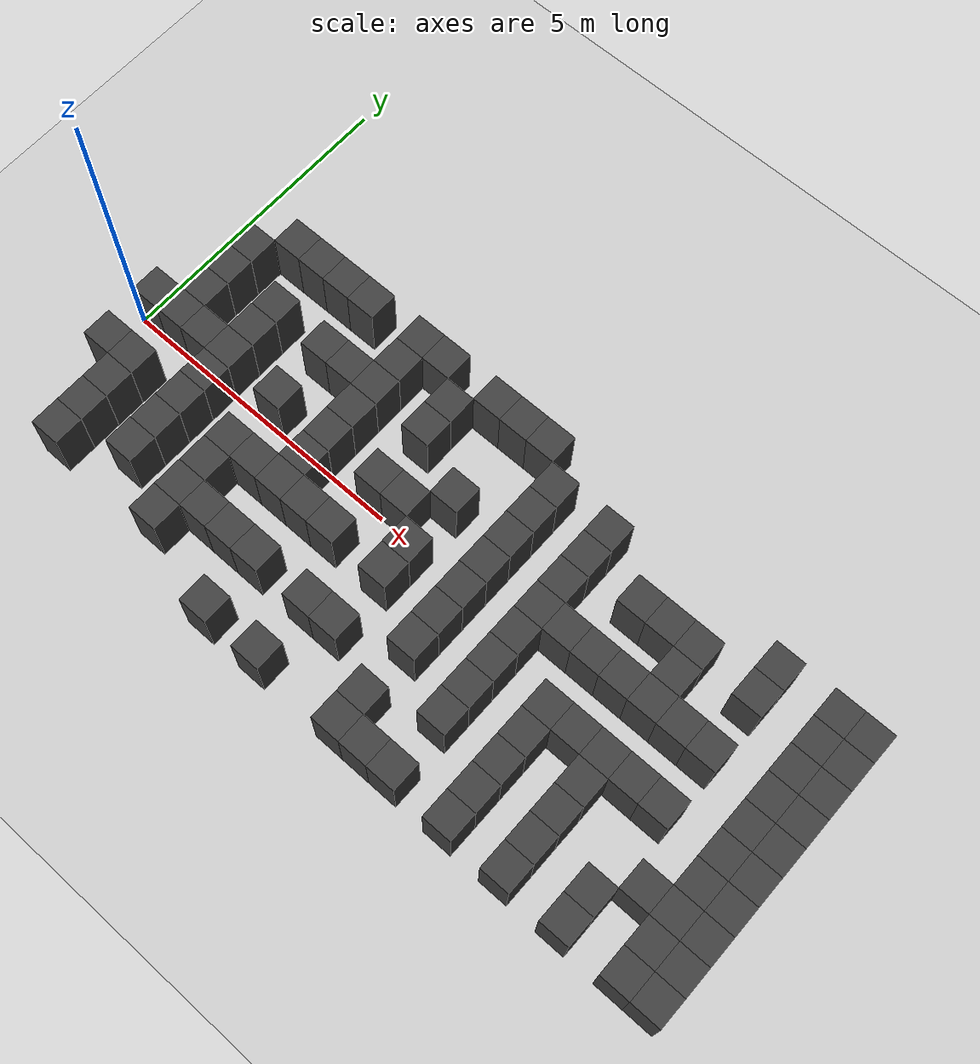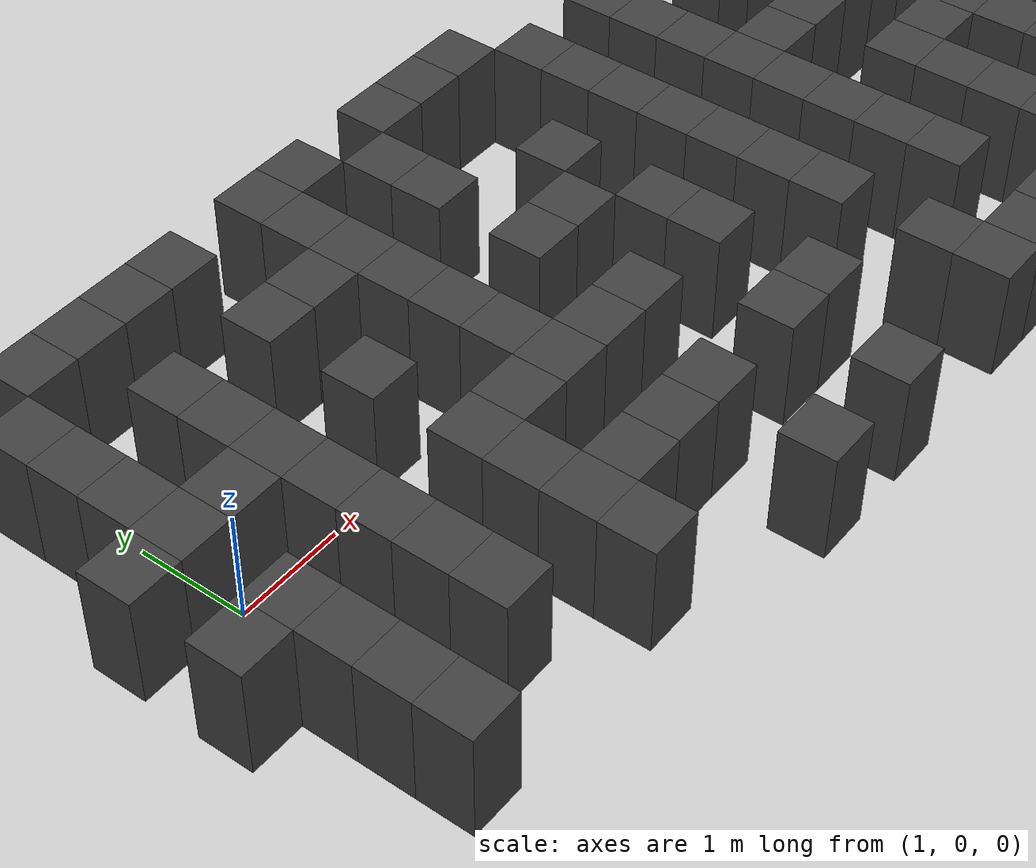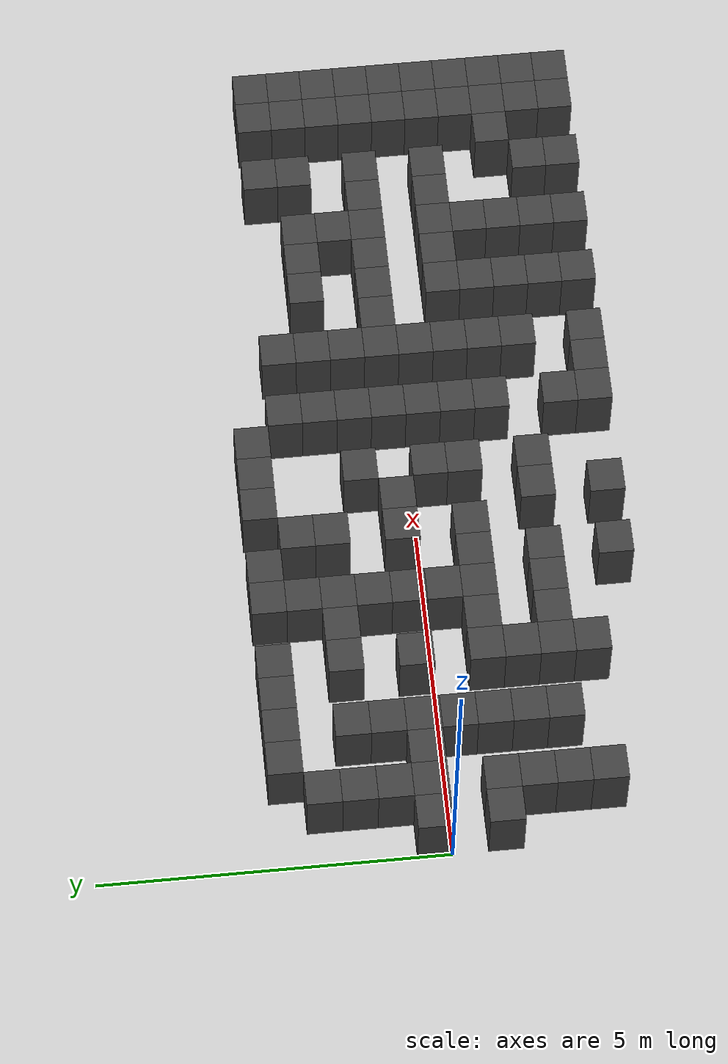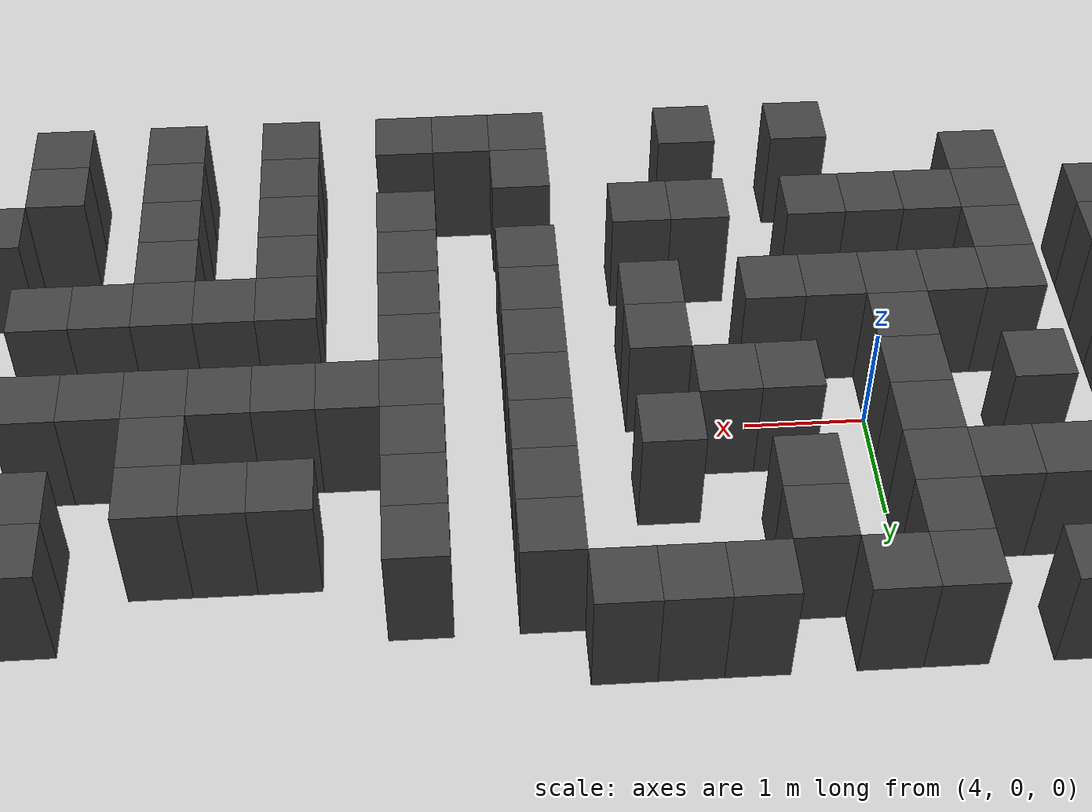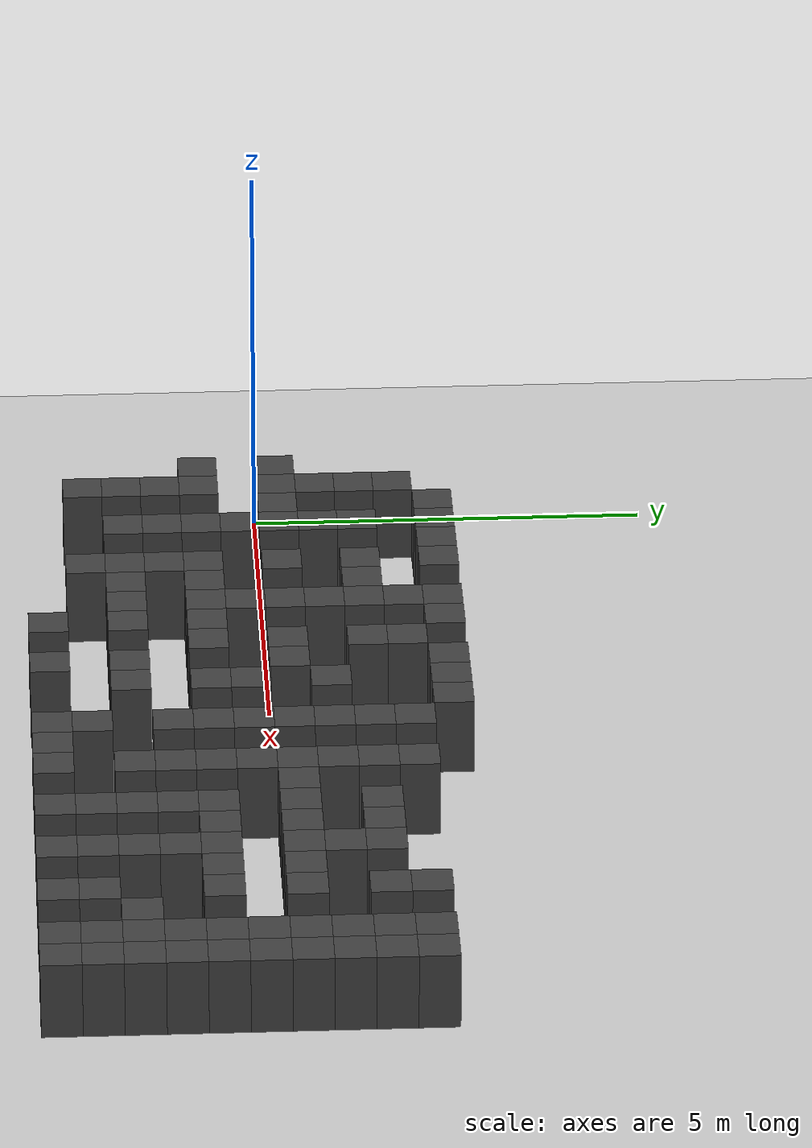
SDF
<sdf version="1.7">
 <world name="map_16271">
  <model name="ground_plane">
   <static>true</static>
   <link name="link">
    <collision name="collision">
     <geometry><plane><normal>0 0 1</normal><size>200 200</size></plane></geometry>
    </collision>
    <visual name="visual">
     <geometry><plane><normal>0 0 1</normal><size>200 200</size></plane></geometry>
     <material><ambient>0.8 0.8 0.8 1</ambient><diffuse>0.8 0.8 0.8 1</diffuse></material>
    </visual>
   </link>
  </model>
  <model name="maze_environment">
   <static>true</static>
   <link name="wall_501">
    <pose>1.250 2.250 0.500 0 0 0</pose>
    <collision name="col"><geometry><box><size>0.5 0.5 1.0</size></box></geometry></collision>
    <visual name="vis">
     <geometry><box><size>0.5 0.5 1.0</size></box></geometry>
     <material><ambient>0.15 0.15 0.15 1</ambient><diffuse>0.25 0.25 0.25 1</diffuse></material>
    </visual>
   </link>
   <link name="wall_502">
    <pose>1.750 2.250 0.500 0 0 0</pose>
    <collision name="col"><geometry><box><size>0.5 0.5 1.0</size></box></geometry></collision>
    <visual name="vis">
     <geometry><box><size>0.5 0.5 1.0</size></box></geometry>
     <material><ambient>0.15 0.15 0.15 1</ambient><diffuse>0.25 0.25 0.25 1</diffuse></material>
    </visual>
   </link>
   <link name="wall_503">
    <pose>2.250 2.250 0.500 0 0 0</pose>
    <collision name="col"><geometry><box><size>0.5 0.5 1.0</size></box></geometry></collision>
    <visual name="vis">
     <geometry><box><size>0.5 0.5 1.0</size></box></geometry>
     <material><ambient>0.15 0.15 0.15 1</ambient><diffuse>0.25 0.25 0.25 1</diffuse></material>
    </visual>
   </link>
   <link name="wall_504">
    <pose>2.750 2.250 0.500 0 0 0</pose>
    <collision name="col"><geometry><box><size>0.5 0.5 1.0</size></box></geometry></collision>
    <visual name="vis">
     <geometry><box><size>0.5 0.5 1.0</size></box></geometry>
     <material><ambient>0.15 0.15 0.15 1</ambient><diffuse>0.25 0.25 0.25 1</diffuse></material>
    </visual>
   </link>
   <link name="wall_505">
    <pose>3.750 2.250 0.500 0 0 0</pose>
    <collision name="col"><geometry><box><size>0.5 0.5 1.0</size></box></geometry></collision>
    <visual name="vis">
     <geometry><box><size>0.5 0.5 1.0</size></box></geometry>
     <material><ambient>0.15 0.15 0.15 1</ambient><diffuse>0.25 0.25 0.25 1</diffuse></material>
    </visual>
   </link>
   <link name="wall_506">
    <pose>4.250 2.250 0.500 0 0 0</pose>
    <collision name="col"><geometry><box><size>0.5 0.5 1.0</size></box></geometry></collision>
    <visual name="vis">
     <geometry><box><size>0.5 0.5 1.0</size></box></geometry>
     <material><ambient>0.15 0.15 0.15 1</ambient><diffuse>0.25 0.25 0.25 1</diffuse></material>
    </visual>
   </link>
   <link name="wall_507">
    <pose>5.250 2.250 0.500 0 0 0</pose>
    <collision name="col"><geometry><box><size>0.5 0.5 1.0</size></box></geometry></collision>
    <visual name="vis">
     <geometry><box><size>0.5 0.5 1.0</size></box></geometry>
     <material><ambient>0.15 0.15 0.15 1</ambient><diffuse>0.25 0.25 0.25 1</diffuse></material>
    </visual>
   </link>
   <link name="wall_508">
    <pose>5.750 2.250 0.500 0 0 0</pose>
    <collision name="col"><geometry><box><size>0.5 0.5 1.0</size></box></geometry></collision>
    <visual name="vis">
     <geometry><box><size>0.5 0.5 1.0</size></box></geometry>
     <material><ambient>0.15 0.15 0.15 1</ambient><diffuse>0.25 0.25 0.25 1</diffuse></material>
    </visual>
   </link>
   <link name="wall_509">
    <pose>6.250 2.250 0.500 0 0 0</pose>
    <collision name="col"><geometry><box><size>0.5 0.5 1.0</size></box></geometry></collision>
    <visual name="vis">
     <geometry><box><size>0.5 0.5 1.0</size></box></geometry>
     <material><ambient>0.15 0.15 0.15 1</ambient><diffuse>0.25 0.25 0.25 1</diffuse></material>
    </visual>
   </link>
   <link name="wall_525">
    <pose>0.750 1.750 0.500 0 0 0</pose>
    <collision name="col"><geometry><box><size>0.5 0.5 1.0</size></box></geometry></collision>
    <visual name="vis">
     <geometry><box><size>0.5 0.5 1.0</size></box></geometry>
     <material><ambient>0.15 0.15 0.15 1</ambient><diffuse>0.25 0.25 0.25 1</diffuse></material>
    </visual>
   </link>
   <link name="wall_526">
    <pose>3.750 1.750 0.500 0 0 0</pose>
    <collision name="col"><geometry><box><size>0.5 0.5 1.0</size></box></geometry></collision>
    <visual name="vis">
     <geometry><box><size>0.5 0.5 1.0</size></box></geometry>
     <material><ambient>0.15 0.15 0.15 1</ambient><diffuse>0.25 0.25 0.25 1</diffuse></material>
    </visual>
   </link>
   <link name="wall_527">
    <pose>4.750 1.750 0.500 0 0 0</pose>
    <collision name="col"><geometry><box><size>0.5 0.5 1.0</size></box></geometry></collision>
    <visual name="vis">
     <geometry><box><size>0.5 0.5 1.0</size></box></geometry>
     <material><ambient>0.15 0.15 0.15 1</ambient><diffuse>0.25 0.25 0.25 1</diffuse></material>
    </visual>
   </link>
   <link name="wall_528">
    <pose>6.750 1.750 0.500 0 0 0</pose>
    <collision name="col"><geometry><box><size>0.5 0.5 1.0</size></box></geometry></collision>
    <visual name="vis">
     <geometry><box><size>0.5 0.5 1.0</size></box></geometry>
     <material><ambient>0.15 0.15 0.15 1</ambient><diffuse>0.25 0.25 0.25 1</diffuse></material>
    </visual>
   </link>
   <link name="wall_529">
    <pose>7.750 1.750 0.500 0 0 0</pose>
    <collision name="col"><geometry><box><size>0.5 0.5 1.0</size></box></geometry></collision>
    <visual name="vis">
     <geometry><box><size>0.5 0.5 1.0</size></box></geometry>
     <material><ambient>0.15 0.15 0.15 1</ambient><diffuse>0.25 0.25 0.25 1</diffuse></material>
    </visual>
   </link>
   <link name="wall_530">
    <pose>10.750 1.750 0.500 0 0 0</pose>
    <collision name="col"><geometry><box><size>0.5 0.5 1.0</size></box></geometry></collision>
    <visual name="vis">
     <geometry><box><size>0.5 0.5 1.0</size></box></geometry>
     <material><ambient>0.15 0.15 0.15 1</ambient><diffuse>0.25 0.25 0.25 1</diffuse></material>
    </visual>
   </link>
   <link name="wall_531">
    <pose>11.750 1.750 0.500 0 0 0</pose>
    <collision name="col"><geometry><box><size>0.5 0.5 1.0</size></box></geometry></collision>
    <visual name="vis">
     <geometry><box><size>0.5 0.5 1.0</size></box></geometry>
     <material><ambient>0.15 0.15 0.15 1</ambient><diffuse>0.25 0.25 0.25 1</diffuse></material>
    </visual>
   </link>
   <link name="wall_532">
    <pose>12.250 1.750 0.500 0 0 0</pose>
    <collision name="col"><geometry><box><size>0.5 0.5 1.0</size></box></geometry></collision>
    <visual name="vis">
     <geometry><box><size>0.5 0.5 1.0</size></box></geometry>
     <material><ambient>0.15 0.15 0.15 1</ambient><diffuse>0.25 0.25 0.25 1</diffuse></material>
    </visual>
   </link>
   <link name="wall_549">
    <pose>0.750 1.250 0.500 0 0 0</pose>
    <collision name="col"><geometry><box><size>0.5 0.5 1.0</size></box></geometry></collision>
    <visual name="vis">
     <geometry><box><size>0.5 0.5 1.0</size></box></geometry>
     <material><ambient>0.15 0.15 0.15 1</ambient><diffuse>0.25 0.25 0.25 1</diffuse></material>
    </visual>
   </link>
   <link name="wall_550">
    <pose>1.750 1.250 0.500 0 0 0</pose>
    <collision name="col"><geometry><box><size>0.5 0.5 1.0</size></box></geometry></collision>
    <visual name="vis">
     <geometry><box><size>0.5 0.5 1.0</size></box></geometry>
     <material><ambient>0.15 0.15 0.15 1</ambient><diffuse>0.25 0.25 0.25 1</diffuse></material>
    </visual>
   </link>
   <link name="wall_551">
    <pose>2.750 1.250 0.500 0 0 0</pose>
    <collision name="col"><geometry><box><size>0.5 0.5 1.0</size></box></geometry></collision>
    <visual name="vis">
     <geometry><box><size>0.5 0.5 1.0</size></box></geometry>
     <material><ambient>0.15 0.15 0.15 1</ambient><diffuse>0.25 0.25 0.25 1</diffuse></material>
    </visual>
   </link>
   <link name="wall_552">
    <pose>3.250 1.250 0.500 0 0 0</pose>
    <collision name="col"><geometry><box><size>0.5 0.5 1.0</size></box></geometry></collision>
    <visual name="vis">
     <geometry><box><size>0.5 0.5 1.0</size></box></geometry>
     <material><ambient>0.15 0.15 0.15 1</ambient><diffuse>0.25 0.25 0.25 1</diffuse></material>
    </visual>
   </link>
   <link name="wall_553">
    <pose>3.750 1.250 0.500 0 0 0</pose>
    <collision name="col"><geometry><box><size>0.5 0.5 1.0</size></box></geometry></collision>
    <visual name="vis">
     <geometry><box><size>0.5 0.5 1.0</size></box></geometry>
     <material><ambient>0.15 0.15 0.15 1</ambient><diffuse>0.25 0.25 0.25 1</diffuse></material>
    </visual>
   </link>
   <link name="wall_554">
    <pose>4.750 1.250 0.500 0 0 0</pose>
    <collision name="col"><geometry><box><size>0.5 0.5 1.0</size></box></geometry></collision>
    <visual name="vis">
     <geometry><box><size>0.5 0.5 1.0</size></box></geometry>
     <material><ambient>0.15 0.15 0.15 1</ambient><diffuse>0.25 0.25 0.25 1</diffuse></material>
    </visual>
   </link>
   <link name="wall_555">
    <pose>6.750 1.250 0.500 0 0 0</pose>
    <collision name="col"><geometry><box><size>0.5 0.5 1.0</size></box></geometry></collision>
    <visual name="vis">
     <geometry><box><size>0.5 0.5 1.0</size></box></geometry>
     <material><ambient>0.15 0.15 0.15 1</ambient><diffuse>0.25 0.25 0.25 1</diffuse></material>
    </visual>
   </link>
   <link name="wall_556">
    <pose>7.750 1.250 0.500 0 0 0</pose>
    <collision name="col"><geometry><box><size>0.5 0.5 1.0</size></box></geometry></collision>
    <visual name="vis">
     <geometry><box><size>0.5 0.5 1.0</size></box></geometry>
     <material><ambient>0.15 0.15 0.15 1</ambient><diffuse>0.25 0.25 0.25 1</diffuse></material>
    </visual>
   </link>
   <link name="wall_557">
    <pose>8.750 1.250 0.500 0 0 0</pose>
    <collision name="col"><geometry><box><size>0.5 0.5 1.0</size></box></geometry></collision>
    <visual name="vis">
     <geometry><box><size>0.5 0.5 1.0</size></box></geometry>
     <material><ambient>0.15 0.15 0.15 1</ambient><diffuse>0.25 0.25 0.25 1</diffuse></material>
    </visual>
   </link>
   <link name="wall_558">
    <pose>9.250 1.250 0.500 0 0 0</pose>
    <collision name="col"><geometry><box><size>0.5 0.5 1.0</size></box></geometry></collision>
    <visual name="vis">
     <geometry><box><size>0.5 0.5 1.0</size></box></geometry>
     <material><ambient>0.15 0.15 0.15 1</ambient><diffuse>0.25 0.25 0.25 1</diffuse></material>
    </visual>
   </link>
   <link name="wall_559">
    <pose>9.750 1.250 0.500 0 0 0</pose>
    <collision name="col"><geometry><box><size>0.5 0.5 1.0</size></box></geometry></collision>
    <visual name="vis">
     <geometry><box><size>0.5 0.5 1.0</size></box></geometry>
     <material><ambient>0.15 0.15 0.15 1</ambient><diffuse>0.25 0.25 0.25 1</diffuse></material>
    </visual>
   </link>
   <link name="wall_560">
    <pose>10.750 1.250 0.500 0 0 0</pose>
    <collision name="col"><geometry><box><size>0.5 0.5 1.0</size></box></geometry></collision>
    <visual name="vis">
     <geometry><box><size>0.5 0.5 1.0</size></box></geometry>
     <material><ambient>0.15 0.15 0.15 1</ambient><diffuse>0.25 0.25 0.25 1</diffuse></material>
    </visual>
   </link>
   <link name="wall_561">
    <pose>11.750 1.250 0.500 0 0 0</pose>
    <collision name="col"><geometry><box><size>0.5 0.5 1.0</size></box></geometry></collision>
    <visual name="vis">
     <geometry><box><size>0.5 0.5 1.0</size></box></geometry>
     <material><ambient>0.15 0.15 0.15 1</ambient><diffuse>0.25 0.25 0.25 1</diffuse></material>
    </visual>
   </link>
   <link name="wall_562">
    <pose>12.250 1.250 0.500 0 0 0</pose>
    <collision name="col"><geometry><box><size>0.5 0.5 1.0</size></box></geometry></collision>
    <visual name="vis">
     <geometry><box><size>0.5 0.5 1.0</size></box></geometry>
     <material><ambient>0.15 0.15 0.15 1</ambient><diffuse>0.25 0.25 0.25 1</diffuse></material>
    </visual>
   </link>
   <link name="wall_569">
    <pose>0.750 0.750 0.500 0 0 0</pose>
    <collision name="col"><geometry><box><size>0.5 0.5 1.0</size></box></geometry></collision>
    <visual name="vis">
     <geometry><box><size>0.5 0.5 1.0</size></box></geometry>
     <material><ambient>0.15 0.15 0.15 1</ambient><diffuse>0.25 0.25 0.25 1</diffuse></material>
    </visual>
   </link>
   <link name="wall_570">
    <pose>1.750 0.750 0.500 0 0 0</pose>
    <collision name="col"><geometry><box><size>0.5 0.5 1.0</size></box></geometry></collision>
    <visual name="vis">
     <geometry><box><size>0.5 0.5 1.0</size></box></geometry>
     <material><ambient>0.15 0.15 0.15 1</ambient><diffuse>0.25 0.25 0.25 1</diffuse></material>
    </visual>
   </link>
   <link name="wall_571">
    <pose>3.750 0.750 0.500 0 0 0</pose>
    <collision name="col"><geometry><box><size>0.5 0.5 1.0</size></box></geometry></collision>
    <visual name="vis">
     <geometry><box><size>0.5 0.5 1.0</size></box></geometry>
     <material><ambient>0.15 0.15 0.15 1</ambient><diffuse>0.25 0.25 0.25 1</diffuse></material>
    </visual>
   </link>
   <link name="wall_572">
    <pose>5.750 0.750 0.500 0 0 0</pose>
    <collision name="col"><geometry><box><size>0.5 0.5 1.0</size></box></geometry></collision>
    <visual name="vis">
     <geometry><box><size>0.5 0.5 1.0</size></box></geometry>
     <material><ambient>0.15 0.15 0.15 1</ambient><diffuse>0.25 0.25 0.25 1</diffuse></material>
    </visual>
   </link>
   <link name="wall_573">
    <pose>6.750 0.750 0.500 0 0 0</pose>
    <collision name="col"><geometry><box><size>0.5 0.5 1.0</size></box></geometry></collision>
    <visual name="vis">
     <geometry><box><size>0.5 0.5 1.0</size></box></geometry>
     <material><ambient>0.15 0.15 0.15 1</ambient><diffuse>0.25 0.25 0.25 1</diffuse></material>
    </visual>
   </link>
   <link name="wall_574">
    <pose>7.750 0.750 0.500 0 0 0</pose>
    <collision name="col"><geometry><box><size>0.5 0.5 1.0</size></box></geometry></collision>
    <visual name="vis">
     <geometry><box><size>0.5 0.5 1.0</size></box></geometry>
     <material><ambient>0.15 0.15 0.15 1</ambient><diffuse>0.25 0.25 0.25 1</diffuse></material>
    </visual>
   </link>
   <link name="wall_575">
    <pose>9.750 0.750 0.500 0 0 0</pose>
    <collision name="col"><geometry><box><size>0.5 0.5 1.0</size></box></geometry></collision>
    <visual name="vis">
     <geometry><box><size>0.5 0.5 1.0</size></box></geometry>
     <material><ambient>0.15 0.15 0.15 1</ambient><diffuse>0.25 0.25 0.25 1</diffuse></material>
    </visual>
   </link>
   <link name="wall_576">
    <pose>11.750 0.750 0.500 0 0 0</pose>
    <collision name="col"><geometry><box><size>0.5 0.5 1.0</size></box></geometry></collision>
    <visual name="vis">
     <geometry><box><size>0.5 0.5 1.0</size></box></geometry>
     <material><ambient>0.15 0.15 0.15 1</ambient><diffuse>0.25 0.25 0.25 1</diffuse></material>
    </visual>
   </link>
   <link name="wall_577">
    <pose>12.250 0.750 0.500 0 0 0</pose>
    <collision name="col"><geometry><box><size>0.5 0.5 1.0</size></box></geometry></collision>
    <visual name="vis">
     <geometry><box><size>0.5 0.5 1.0</size></box></geometry>
     <material><ambient>0.15 0.15 0.15 1</ambient><diffuse>0.25 0.25 0.25 1</diffuse></material>
    </visual>
   </link>
   <link name="wall_594">
    <pose>0.250 0.250 0.500 0 0 0</pose>
    <collision name="col"><geometry><box><size>0.5 0.5 1.0</size></box></geometry></collision>
    <visual name="vis">
     <geometry><box><size>0.5 0.5 1.0</size></box></geometry>
     <material><ambient>0.15 0.15 0.15 1</ambient><diffuse>0.25 0.25 0.25 1</diffuse></material>
    </visual>
   </link>
   <link name="wall_595">
    <pose>0.750 0.250 0.500 0 0 0</pose>
    <collision name="col"><geometry><box><size>0.5 0.5 1.0</size></box></geometry></collision>
    <visual name="vis">
     <geometry><box><size>0.5 0.5 1.0</size></box></geometry>
     <material><ambient>0.15 0.15 0.15 1</ambient><diffuse>0.25 0.25 0.25 1</diffuse></material>
    </visual>
   </link>
   <link name="wall_596">
    <pose>1.250 0.250 0.500 0 0 0</pose>
    <collision name="col"><geometry><box><size>0.5 0.5 1.0</size></box></geometry></collision>
    <visual name="vis">
     <geometry><box><size>0.5 0.5 1.0</size></box></geometry>
     <material><ambient>0.15 0.15 0.15 1</ambient><diffuse>0.25 0.25 0.25 1</diffuse></material>
    </visual>
   </link>
   <link name="wall_597">
    <pose>1.750 0.250 0.500 0 0 0</pose>
    <collision name="col"><geometry><box><size>0.5 0.5 1.0</size></box></geometry></collision>
    <visual name="vis">
     <geometry><box><size>0.5 0.5 1.0</size></box></geometry>
     <material><ambient>0.15 0.15 0.15 1</ambient><diffuse>0.25 0.25 0.25 1</diffuse></material>
    </visual>
   </link>
   <link name="wall_598">
    <pose>2.750 0.250 0.500 0 0 0</pose>
    <collision name="col"><geometry><box><size>0.5 0.5 1.0</size></box></geometry></collision>
    <visual name="vis">
     <geometry><box><size>0.5 0.5 1.0</size></box></geometry>
     <material><ambient>0.15 0.15 0.15 1</ambient><diffuse>0.25 0.25 0.25 1</diffuse></material>
    </visual>
   </link>
   <link name="wall_599">
    <pose>3.750 0.250 0.500 0 0 0</pose>
    <collision name="col"><geometry><box><size>0.5 0.5 1.0</size></box></geometry></collision>
    <visual name="vis">
     <geometry><box><size>0.5 0.5 1.0</size></box></geometry>
     <material><ambient>0.15 0.15 0.15 1</ambient><diffuse>0.25 0.25 0.25 1</diffuse></material>
    </visual>
   </link>
   <link name="wall_600">
    <pose>4.750 0.250 0.500 0 0 0</pose>
    <collision name="col"><geometry><box><size>0.5 0.5 1.0</size></box></geometry></collision>
    <visual name="vis">
     <geometry><box><size>0.5 0.5 1.0</size></box></geometry>
     <material><ambient>0.15 0.15 0.15 1</ambient><diffuse>0.25 0.25 0.25 1</diffuse></material>
    </visual>
   </link>
   <link name="wall_601">
    <pose>5.250 0.250 0.500 0 0 0</pose>
    <collision name="col"><geometry><box><size>0.5 0.5 1.0</size></box></geometry></collision>
    <visual name="vis">
     <geometry><box><size>0.5 0.5 1.0</size></box></geometry>
     <material><ambient>0.15 0.15 0.15 1</ambient><diffuse>0.25 0.25 0.25 1</diffuse></material>
    </visual>
   </link>
   <link name="wall_602">
    <pose>6.750 0.250 0.500 0 0 0</pose>
    <collision name="col"><geometry><box><size>0.5 0.5 1.0</size></box></geometry></collision>
    <visual name="vis">
     <geometry><box><size>0.5 0.5 1.0</size></box></geometry>
     <material><ambient>0.15 0.15 0.15 1</ambient><diffuse>0.25 0.25 0.25 1</diffuse></material>
    </visual>
   </link>
   <link name="wall_603">
    <pose>7.750 0.250 0.500 0 0 0</pose>
    <collision name="col"><geometry><box><size>0.5 0.5 1.0</size></box></geometry></collision>
    <visual name="vis">
     <geometry><box><size>0.5 0.5 1.0</size></box></geometry>
     <material><ambient>0.15 0.15 0.15 1</ambient><diffuse>0.25 0.25 0.25 1</diffuse></material>
    </visual>
   </link>
   <link name="wall_604">
    <pose>8.250 0.250 0.500 0 0 0</pose>
    <collision name="col"><geometry><box><size>0.5 0.5 1.0</size></box></geometry></collision>
    <visual name="vis">
     <geometry><box><size>0.5 0.5 1.0</size></box></geometry>
     <material><ambient>0.15 0.15 0.15 1</ambient><diffuse>0.25 0.25 0.25 1</diffuse></material>
    </visual>
   </link>
   <link name="wall_605">
    <pose>8.750 0.250 0.500 0 0 0</pose>
    <collision name="col"><geometry><box><size>0.5 0.5 1.0</size></box></geometry></collision>
    <visual name="vis">
     <geometry><box><size>0.5 0.5 1.0</size></box></geometry>
     <material><ambient>0.15 0.15 0.15 1</ambient><diffuse>0.25 0.25 0.25 1</diffuse></material>
    </visual>
   </link>
   <link name="wall_606">
    <pose>9.250 0.250 0.500 0 0 0</pose>
    <collision name="col"><geometry><box><size>0.5 0.5 1.0</size></box></geometry></collision>
    <visual name="vis">
     <geometry><box><size>0.5 0.5 1.0</size></box></geometry>
     <material><ambient>0.15 0.15 0.15 1</ambient><diffuse>0.25 0.25 0.25 1</diffuse></material>
    </visual>
   </link>
   <link name="wall_607">
    <pose>9.750 0.250 0.500 0 0 0</pose>
    <collision name="col"><geometry><box><size>0.5 0.5 1.0</size></box></geometry></collision>
    <visual name="vis">
     <geometry><box><size>0.5 0.5 1.0</size></box></geometry>
     <material><ambient>0.15 0.15 0.15 1</ambient><diffuse>0.25 0.25 0.25 1</diffuse></material>
    </visual>
   </link>
   <link name="wall_608">
    <pose>10.250 0.250 0.500 0 0 0</pose>
    <collision name="col"><geometry><box><size>0.5 0.5 1.0</size></box></geometry></collision>
    <visual name="vis">
     <geometry><box><size>0.5 0.5 1.0</size></box></geometry>
     <material><ambient>0.15 0.15 0.15 1</ambient><diffuse>0.25 0.25 0.25 1</diffuse></material>
    </visual>
   </link>
   <link name="wall_609">
    <pose>10.750 0.250 0.500 0 0 0</pose>
    <collision name="col"><geometry><box><size>0.5 0.5 1.0</size></box></geometry></collision>
    <visual name="vis">
     <geometry><box><size>0.5 0.5 1.0</size></box></geometry>
     <material><ambient>0.15 0.15 0.15 1</ambient><diffuse>0.25 0.25 0.25 1</diffuse></material>
    </visual>
   </link>
   <link name="wall_610">
    <pose>11.750 0.250 0.500 0 0 0</pose>
    <collision name="col"><geometry><box><size>0.5 0.5 1.0</size></box></geometry></collision>
    <visual name="vis">
     <geometry><box><size>0.5 0.5 1.0</size></box></geometry>
     <material><ambient>0.15 0.15 0.15 1</ambient><diffuse>0.25 0.25 0.25 1</diffuse></material>
    </visual>
   </link>
   <link name="wall_611">
    <pose>12.250 0.250 0.500 0 0 0</pose>
    <collision name="col"><geometry><box><size>0.5 0.5 1.0</size></box></geometry></collision>
    <visual name="vis">
     <geometry><box><size>0.5 0.5 1.0</size></box></geometry>
     <material><ambient>0.15 0.15 0.15 1</ambient><diffuse>0.25 0.25 0.25 1</diffuse></material>
    </visual>
   </link>
   <link name="wall_619">
    <pose>1.750 -0.250 0.500 0 0 0</pose>
    <collision name="col"><geometry><box><size>0.5 0.5 1.0</size></box></geometry></collision>
    <visual name="vis">
     <geometry><box><size>0.5 0.5 1.0</size></box></geometry>
     <material><ambient>0.15 0.15 0.15 1</ambient><diffuse>0.25 0.25 0.25 1</diffuse></material>
    </visual>
   </link>
   <link name="wall_620">
    <pose>3.750 -0.250 0.500 0 0 0</pose>
    <collision name="col"><geometry><box><size>0.5 0.5 1.0</size></box></geometry></collision>
    <visual name="vis">
     <geometry><box><size>0.5 0.5 1.0</size></box></geometry>
     <material><ambient>0.15 0.15 0.15 1</ambient><diffuse>0.25 0.25 0.25 1</diffuse></material>
    </visual>
   </link>
   <link name="wall_621">
    <pose>5.750 -0.250 0.500 0 0 0</pose>
    <collision name="col"><geometry><box><size>0.5 0.5 1.0</size></box></geometry></collision>
    <visual name="vis">
     <geometry><box><size>0.5 0.5 1.0</size></box></geometry>
     <material><ambient>0.15 0.15 0.15 1</ambient><diffuse>0.25 0.25 0.25 1</diffuse></material>
    </visual>
   </link>
   <link name="wall_622">
    <pose>6.750 -0.250 0.500 0 0 0</pose>
    <collision name="col"><geometry><box><size>0.5 0.5 1.0</size></box></geometry></collision>
    <visual name="vis">
     <geometry><box><size>0.5 0.5 1.0</size></box></geometry>
     <material><ambient>0.15 0.15 0.15 1</ambient><diffuse>0.25 0.25 0.25 1</diffuse></material>
    </visual>
   </link>
   <link name="wall_623">
    <pose>7.750 -0.250 0.500 0 0 0</pose>
    <collision name="col"><geometry><box><size>0.5 0.5 1.0</size></box></geometry></collision>
    <visual name="vis">
     <geometry><box><size>0.5 0.5 1.0</size></box></geometry>
     <material><ambient>0.15 0.15 0.15 1</ambient><diffuse>0.25 0.25 0.25 1</diffuse></material>
    </visual>
   </link>
   <link name="wall_624">
    <pose>11.750 -0.250 0.500 0 0 0</pose>
    <collision name="col"><geometry><box><size>0.5 0.5 1.0</size></box></geometry></collision>
    <visual name="vis">
     <geometry><box><size>0.5 0.5 1.0</size></box></geometry>
     <material><ambient>0.15 0.15 0.15 1</ambient><diffuse>0.25 0.25 0.25 1</diffuse></material>
    </visual>
   </link>
   <link name="wall_625">
    <pose>12.250 -0.250 0.500 0 0 0</pose>
    <collision name="col"><geometry><box><size>0.5 0.5 1.0</size></box></geometry></collision>
    <visual name="vis">
     <geometry><box><size>0.5 0.5 1.0</size></box></geometry>
     <material><ambient>0.15 0.15 0.15 1</ambient><diffuse>0.25 0.25 0.25 1</diffuse></material>
    </visual>
   </link>
   <link name="wall_642">
    <pose>0.250 -0.750 0.500 0 0 0</pose>
    <collision name="col"><geometry><box><size>0.5 0.5 1.0</size></box></geometry></collision>
    <visual name="vis">
     <geometry><box><size>0.5 0.5 1.0</size></box></geometry>
     <material><ambient>0.15 0.15 0.15 1</ambient><diffuse>0.25 0.25 0.25 1</diffuse></material>
    </visual>
   </link>
   <link name="wall_643">
    <pose>0.750 -0.750 0.500 0 0 0</pose>
    <collision name="col"><geometry><box><size>0.5 0.5 1.0</size></box></geometry></collision>
    <visual name="vis">
     <geometry><box><size>0.5 0.5 1.0</size></box></geometry>
     <material><ambient>0.15 0.15 0.15 1</ambient><diffuse>0.25 0.25 0.25 1</diffuse></material>
    </visual>
   </link>
   <link name="wall_644">
    <pose>1.750 -0.750 0.500 0 0 0</pose>
    <collision name="col"><geometry><box><size>0.5 0.5 1.0</size></box></geometry></collision>
    <visual name="vis">
     <geometry><box><size>0.5 0.5 1.0</size></box></geometry>
     <material><ambient>0.15 0.15 0.15 1</ambient><diffuse>0.25 0.25 0.25 1</diffuse></material>
    </visual>
   </link>
   <link name="wall_645">
    <pose>2.750 -0.750 0.500 0 0 0</pose>
    <collision name="col"><geometry><box><size>0.5 0.5 1.0</size></box></geometry></collision>
    <visual name="vis">
     <geometry><box><size>0.5 0.5 1.0</size></box></geometry>
     <material><ambient>0.15 0.15 0.15 1</ambient><diffuse>0.25 0.25 0.25 1</diffuse></material>
    </visual>
   </link>
   <link name="wall_646">
    <pose>3.250 -0.750 0.500 0 0 0</pose>
    <collision name="col"><geometry><box><size>0.5 0.5 1.0</size></box></geometry></collision>
    <visual name="vis">
     <geometry><box><size>0.5 0.5 1.0</size></box></geometry>
     <material><ambient>0.15 0.15 0.15 1</ambient><diffuse>0.25 0.25 0.25 1</diffuse></material>
    </visual>
   </link>
   <link name="wall_647">
    <pose>3.750 -0.750 0.500 0 0 0</pose>
    <collision name="col"><geometry><box><size>0.5 0.5 1.0</size></box></geometry></collision>
    <visual name="vis">
     <geometry><box><size>0.5 0.5 1.0</size></box></geometry>
     <material><ambient>0.15 0.15 0.15 1</ambient><diffuse>0.25 0.25 0.25 1</diffuse></material>
    </visual>
   </link>
   <link name="wall_648">
    <pose>4.250 -0.750 0.500 0 0 0</pose>
    <collision name="col"><geometry><box><size>0.5 0.5 1.0</size></box></geometry></collision>
    <visual name="vis">
     <geometry><box><size>0.5 0.5 1.0</size></box></geometry>
     <material><ambient>0.15 0.15 0.15 1</ambient><diffuse>0.25 0.25 0.25 1</diffuse></material>
    </visual>
   </link>
   <link name="wall_649">
    <pose>4.750 -0.750 0.500 0 0 0</pose>
    <collision name="col"><geometry><box><size>0.5 0.5 1.0</size></box></geometry></collision>
    <visual name="vis">
     <geometry><box><size>0.5 0.5 1.0</size></box></geometry>
     <material><ambient>0.15 0.15 0.15 1</ambient><diffuse>0.25 0.25 0.25 1</diffuse></material>
    </visual>
   </link>
   <link name="wall_650">
    <pose>5.750 -0.750 0.500 0 0 0</pose>
    <collision name="col"><geometry><box><size>0.5 0.5 1.0</size></box></geometry></collision>
    <visual name="vis">
     <geometry><box><size>0.5 0.5 1.0</size></box></geometry>
     <material><ambient>0.15 0.15 0.15 1</ambient><diffuse>0.25 0.25 0.25 1</diffuse></material>
    </visual>
   </link>
   <link name="wall_651">
    <pose>6.750 -0.750 0.500 0 0 0</pose>
    <collision name="col"><geometry><box><size>0.5 0.5 1.0</size></box></geometry></collision>
    <visual name="vis">
     <geometry><box><size>0.5 0.5 1.0</size></box></geometry>
     <material><ambient>0.15 0.15 0.15 1</ambient><diffuse>0.25 0.25 0.25 1</diffuse></material>
    </visual>
   </link>
   <link name="wall_652">
    <pose>7.750 -0.750 0.500 0 0 0</pose>
    <collision name="col"><geometry><box><size>0.5 0.5 1.0</size></box></geometry></collision>
    <visual name="vis">
     <geometry><box><size>0.5 0.5 1.0</size></box></geometry>
     <material><ambient>0.15 0.15 0.15 1</ambient><diffuse>0.25 0.25 0.25 1</diffuse></material>
    </visual>
   </link>
   <link name="wall_653">
    <pose>8.750 -0.750 0.500 0 0 0</pose>
    <collision name="col"><geometry><box><size>0.5 0.5 1.0</size></box></geometry></collision>
    <visual name="vis">
     <geometry><box><size>0.5 0.5 1.0</size></box></geometry>
     <material><ambient>0.15 0.15 0.15 1</ambient><diffuse>0.25 0.25 0.25 1</diffuse></material>
    </visual>
   </link>
   <link name="wall_654">
    <pose>9.250 -0.750 0.500 0 0 0</pose>
    <collision name="col"><geometry><box><size>0.5 0.5 1.0</size></box></geometry></collision>
    <visual name="vis">
     <geometry><box><size>0.5 0.5 1.0</size></box></geometry>
     <material><ambient>0.15 0.15 0.15 1</ambient><diffuse>0.25 0.25 0.25 1</diffuse></material>
    </visual>
   </link>
   <link name="wall_655">
    <pose>9.750 -0.750 0.500 0 0 0</pose>
    <collision name="col"><geometry><box><size>0.5 0.5 1.0</size></box></geometry></collision>
    <visual name="vis">
     <geometry><box><size>0.5 0.5 1.0</size></box></geometry>
     <material><ambient>0.15 0.15 0.15 1</ambient><diffuse>0.25 0.25 0.25 1</diffuse></material>
    </visual>
   </link>
   <link name="wall_656">
    <pose>10.250 -0.750 0.500 0 0 0</pose>
    <collision name="col"><geometry><box><size>0.5 0.5 1.0</size></box></geometry></collision>
    <visual name="vis">
     <geometry><box><size>0.5 0.5 1.0</size></box></geometry>
     <material><ambient>0.15 0.15 0.15 1</ambient><diffuse>0.25 0.25 0.25 1</diffuse></material>
    </visual>
   </link>
   <link name="wall_657">
    <pose>10.750 -0.750 0.500 0 0 0</pose>
    <collision name="col"><geometry><box><size>0.5 0.5 1.0</size></box></geometry></collision>
    <visual name="vis">
     <geometry><box><size>0.5 0.5 1.0</size></box></geometry>
     <material><ambient>0.15 0.15 0.15 1</ambient><diffuse>0.25 0.25 0.25 1</diffuse></material>
    </visual>
   </link>
   <link name="wall_658">
    <pose>11.750 -0.750 0.500 0 0 0</pose>
    <collision name="col"><geometry><box><size>0.5 0.5 1.0</size></box></geometry></collision>
    <visual name="vis">
     <geometry><box><size>0.5 0.5 1.0</size></box></geometry>
     <material><ambient>0.15 0.15 0.15 1</ambient><diffuse>0.25 0.25 0.25 1</diffuse></material>
    </visual>
   </link>
   <link name="wall_659">
    <pose>12.250 -0.750 0.500 0 0 0</pose>
    <collision name="col"><geometry><box><size>0.5 0.5 1.0</size></box></geometry></collision>
    <visual name="vis">
     <geometry><box><size>0.5 0.5 1.0</size></box></geometry>
     <material><ambient>0.15 0.15 0.15 1</ambient><diffuse>0.25 0.25 0.25 1</diffuse></material>
    </visual>
   </link>
   <link name="wall_668">
    <pose>0.750 -1.250 0.500 0 0 0</pose>
    <collision name="col"><geometry><box><size>0.5 0.5 1.0</size></box></geometry></collision>
    <visual name="vis">
     <geometry><box><size>0.5 0.5 1.0</size></box></geometry>
     <material><ambient>0.15 0.15 0.15 1</ambient><diffuse>0.25 0.25 0.25 1</diffuse></material>
    </visual>
   </link>
   <link name="wall_669">
    <pose>1.750 -1.250 0.500 0 0 0</pose>
    <collision name="col"><geometry><box><size>0.5 0.5 1.0</size></box></geometry></collision>
    <visual name="vis">
     <geometry><box><size>0.5 0.5 1.0</size></box></geometry>
     <material><ambient>0.15 0.15 0.15 1</ambient><diffuse>0.25 0.25 0.25 1</diffuse></material>
    </visual>
   </link>
   <link name="wall_670">
    <pose>2.750 -1.250 0.500 0 0 0</pose>
    <collision name="col"><geometry><box><size>0.5 0.5 1.0</size></box></geometry></collision>
    <visual name="vis">
     <geometry><box><size>0.5 0.5 1.0</size></box></geometry>
     <material><ambient>0.15 0.15 0.15 1</ambient><diffuse>0.25 0.25 0.25 1</diffuse></material>
    </visual>
   </link>
   <link name="wall_671">
    <pose>6.750 -1.250 0.500 0 0 0</pose>
    <collision name="col"><geometry><box><size>0.5 0.5 1.0</size></box></geometry></collision>
    <visual name="vis">
     <geometry><box><size>0.5 0.5 1.0</size></box></geometry>
     <material><ambient>0.15 0.15 0.15 1</ambient><diffuse>0.25 0.25 0.25 1</diffuse></material>
    </visual>
   </link>
   <link name="wall_672">
    <pose>7.750 -1.250 0.500 0 0 0</pose>
    <collision name="col"><geometry><box><size>0.5 0.5 1.0</size></box></geometry></collision>
    <visual name="vis">
     <geometry><box><size>0.5 0.5 1.0</size></box></geometry>
     <material><ambient>0.15 0.15 0.15 1</ambient><diffuse>0.25 0.25 0.25 1</diffuse></material>
    </visual>
   </link>
   <link name="wall_673">
    <pose>8.750 -1.250 0.500 0 0 0</pose>
    <collision name="col"><geometry><box><size>0.5 0.5 1.0</size></box></geometry></collision>
    <visual name="vis">
     <geometry><box><size>0.5 0.5 1.0</size></box></geometry>
     <material><ambient>0.15 0.15 0.15 1</ambient><diffuse>0.25 0.25 0.25 1</diffuse></material>
    </visual>
   </link>
   <link name="wall_674">
    <pose>9.750 -1.250 0.500 0 0 0</pose>
    <collision name="col"><geometry><box><size>0.5 0.5 1.0</size></box></geometry></collision>
    <visual name="vis">
     <geometry><box><size>0.5 0.5 1.0</size></box></geometry>
     <material><ambient>0.15 0.15 0.15 1</ambient><diffuse>0.25 0.25 0.25 1</diffuse></material>
    </visual>
   </link>
   <link name="wall_675">
    <pose>11.750 -1.250 0.500 0 0 0</pose>
    <collision name="col"><geometry><box><size>0.5 0.5 1.0</size></box></geometry></collision>
    <visual name="vis">
     <geometry><box><size>0.5 0.5 1.0</size></box></geometry>
     <material><ambient>0.15 0.15 0.15 1</ambient><diffuse>0.25 0.25 0.25 1</diffuse></material>
    </visual>
   </link>
   <link name="wall_676">
    <pose>12.250 -1.250 0.500 0 0 0</pose>
    <collision name="col"><geometry><box><size>0.5 0.5 1.0</size></box></geometry></collision>
    <visual name="vis">
     <geometry><box><size>0.5 0.5 1.0</size></box></geometry>
     <material><ambient>0.15 0.15 0.15 1</ambient><diffuse>0.25 0.25 0.25 1</diffuse></material>
    </visual>
   </link>
   <link name="wall_693">
    <pose>0.750 -1.750 0.500 0 0 0</pose>
    <collision name="col"><geometry><box><size>0.5 0.5 1.0</size></box></geometry></collision>
    <visual name="vis">
     <geometry><box><size>0.5 0.5 1.0</size></box></geometry>
     <material><ambient>0.15 0.15 0.15 1</ambient><diffuse>0.25 0.25 0.25 1</diffuse></material>
    </visual>
   </link>
   <link name="wall_694">
    <pose>1.750 -1.750 0.500 0 0 0</pose>
    <collision name="col"><geometry><box><size>0.5 0.5 1.0</size></box></geometry></collision>
    <visual name="vis">
     <geometry><box><size>0.5 0.5 1.0</size></box></geometry>
     <material><ambient>0.15 0.15 0.15 1</ambient><diffuse>0.25 0.25 0.25 1</diffuse></material>
    </visual>
   </link>
   <link name="wall_695">
    <pose>2.750 -1.750 0.500 0 0 0</pose>
    <collision name="col"><geometry><box><size>0.5 0.5 1.0</size></box></geometry></collision>
    <visual name="vis">
     <geometry><box><size>0.5 0.5 1.0</size></box></geometry>
     <material><ambient>0.15 0.15 0.15 1</ambient><diffuse>0.25 0.25 0.25 1</diffuse></material>
    </visual>
   </link>
   <link name="wall_696">
    <pose>3.250 -1.750 0.500 0 0 0</pose>
    <collision name="col"><geometry><box><size>0.5 0.5 1.0</size></box></geometry></collision>
    <visual name="vis">
     <geometry><box><size>0.5 0.5 1.0</size></box></geometry>
     <material><ambient>0.15 0.15 0.15 1</ambient><diffuse>0.25 0.25 0.25 1</diffuse></material>
    </visual>
   </link>
   <link name="wall_697">
    <pose>3.750 -1.750 0.500 0 0 0</pose>
    <collision name="col"><geometry><box><size>0.5 0.5 1.0</size></box></geometry></collision>
    <visual name="vis">
     <geometry><box><size>0.5 0.5 1.0</size></box></geometry>
     <material><ambient>0.15 0.15 0.15 1</ambient><diffuse>0.25 0.25 0.25 1</diffuse></material>
    </visual>
   </link>
   <link name="wall_698">
    <pose>4.250 -1.750 0.500 0 0 0</pose>
    <collision name="col"><geometry><box><size>0.5 0.5 1.0</size></box></geometry></collision>
    <visual name="vis">
     <geometry><box><size>0.5 0.5 1.0</size></box></geometry>
     <material><ambient>0.15 0.15 0.15 1</ambient><diffuse>0.25 0.25 0.25 1</diffuse></material>
    </visual>
   </link>
   <link name="wall_699">
    <pose>5.250 -1.750 0.500 0 0 0</pose>
    <collision name="col"><geometry><box><size>0.5 0.5 1.0</size></box></geometry></collision>
    <visual name="vis">
     <geometry><box><size>0.5 0.5 1.0</size></box></geometry>
     <material><ambient>0.15 0.15 0.15 1</ambient><diffuse>0.25 0.25 0.25 1</diffuse></material>
    </visual>
   </link>
   <link name="wall_700">
    <pose>5.750 -1.750 0.500 0 0 0</pose>
    <collision name="col"><geometry><box><size>0.5 0.5 1.0</size></box></geometry></collision>
    <visual name="vis">
     <geometry><box><size>0.5 0.5 1.0</size></box></geometry>
     <material><ambient>0.15 0.15 0.15 1</ambient><diffuse>0.25 0.25 0.25 1</diffuse></material>
    </visual>
   </link>
   <link name="wall_701">
    <pose>7.750 -1.750 0.500 0 0 0</pose>
    <collision name="col"><geometry><box><size>0.5 0.5 1.0</size></box></geometry></collision>
    <visual name="vis">
     <geometry><box><size>0.5 0.5 1.0</size></box></geometry>
     <material><ambient>0.15 0.15 0.15 1</ambient><diffuse>0.25 0.25 0.25 1</diffuse></material>
    </visual>
   </link>
   <link name="wall_702">
    <pose>8.750 -1.750 0.500 0 0 0</pose>
    <collision name="col"><geometry><box><size>0.5 0.5 1.0</size></box></geometry></collision>
    <visual name="vis">
     <geometry><box><size>0.5 0.5 1.0</size></box></geometry>
     <material><ambient>0.15 0.15 0.15 1</ambient><diffuse>0.25 0.25 0.25 1</diffuse></material>
    </visual>
   </link>
   <link name="wall_703">
    <pose>9.750 -1.750 0.500 0 0 0</pose>
    <collision name="col"><geometry><box><size>0.5 0.5 1.0</size></box></geometry></collision>
    <visual name="vis">
     <geometry><box><size>0.5 0.5 1.0</size></box></geometry>
     <material><ambient>0.15 0.15 0.15 1</ambient><diffuse>0.25 0.25 0.25 1</diffuse></material>
    </visual>
   </link>
   <link name="wall_704">
    <pose>11.250 -1.750 0.500 0 0 0</pose>
    <collision name="col"><geometry><box><size>0.5 0.5 1.0</size></box></geometry></collision>
    <visual name="vis">
     <geometry><box><size>0.5 0.5 1.0</size></box></geometry>
     <material><ambient>0.15 0.15 0.15 1</ambient><diffuse>0.25 0.25 0.25 1</diffuse></material>
    </visual>
   </link>
   <link name="wall_705">
    <pose>11.750 -1.750 0.500 0 0 0</pose>
    <collision name="col"><geometry><box><size>0.5 0.5 1.0</size></box></geometry></collision>
    <visual name="vis">
     <geometry><box><size>0.5 0.5 1.0</size></box></geometry>
     <material><ambient>0.15 0.15 0.15 1</ambient><diffuse>0.25 0.25 0.25 1</diffuse></material>
    </visual>
   </link>
   <link name="wall_706">
    <pose>12.250 -1.750 0.500 0 0 0</pose>
    <collision name="col"><geometry><box><size>0.5 0.5 1.0</size></box></geometry></collision>
    <visual name="vis">
     <geometry><box><size>0.5 0.5 1.0</size></box></geometry>
     <material><ambient>0.15 0.15 0.15 1</ambient><diffuse>0.25 0.25 0.25 1</diffuse></material>
    </visual>
   </link>
   <link name="wall_712">
    <pose>0.750 -2.250 0.500 0 0 0</pose>
    <collision name="col"><geometry><box><size>0.5 0.5 1.0</size></box></geometry></collision>
    <visual name="vis">
     <geometry><box><size>0.5 0.5 1.0</size></box></geometry>
     <material><ambient>0.15 0.15 0.15 1</ambient><diffuse>0.25 0.25 0.25 1</diffuse></material>
    </visual>
   </link>
   <link name="wall_713">
    <pose>2.750 -2.250 0.500 0 0 0</pose>
    <collision name="col"><geometry><box><size>0.5 0.5 1.0</size></box></geometry></collision>
    <visual name="vis">
     <geometry><box><size>0.5 0.5 1.0</size></box></geometry>
     <material><ambient>0.15 0.15 0.15 1</ambient><diffuse>0.25 0.25 0.25 1</diffuse></material>
    </visual>
   </link>
   <link name="wall_714">
    <pose>6.750 -2.250 0.500 0 0 0</pose>
    <collision name="col"><geometry><box><size>0.5 0.5 1.0</size></box></geometry></collision>
    <visual name="vis">
     <geometry><box><size>0.5 0.5 1.0</size></box></geometry>
     <material><ambient>0.15 0.15 0.15 1</ambient><diffuse>0.25 0.25 0.25 1</diffuse></material>
    </visual>
   </link>
   <link name="wall_715">
    <pose>8.750 -2.250 0.500 0 0 0</pose>
    <collision name="col"><geometry><box><size>0.5 0.5 1.0</size></box></geometry></collision>
    <visual name="vis">
     <geometry><box><size>0.5 0.5 1.0</size></box></geometry>
     <material><ambient>0.15 0.15 0.15 1</ambient><diffuse>0.25 0.25 0.25 1</diffuse></material>
    </visual>
   </link>
   <link name="wall_716">
    <pose>9.750 -2.250 0.500 0 0 0</pose>
    <collision name="col"><geometry><box><size>0.5 0.5 1.0</size></box></geometry></collision>
    <visual name="vis">
     <geometry><box><size>0.5 0.5 1.0</size></box></geometry>
     <material><ambient>0.15 0.15 0.15 1</ambient><diffuse>0.25 0.25 0.25 1</diffuse></material>
    </visual>
   </link>
   <link name="wall_717">
    <pose>10.750 -2.250 0.500 0 0 0</pose>
    <collision name="col"><geometry><box><size>0.5 0.5 1.0</size></box></geometry></collision>
    <visual name="vis">
     <geometry><box><size>0.5 0.5 1.0</size></box></geometry>
     <material><ambient>0.15 0.15 0.15 1</ambient><diffuse>0.25 0.25 0.25 1</diffuse></material>
    </visual>
   </link>
   <link name="wall_718">
    <pose>11.750 -2.250 0.500 0 0 0</pose>
    <collision name="col"><geometry><box><size>0.5 0.5 1.0</size></box></geometry></collision>
    <visual name="vis">
     <geometry><box><size>0.5 0.5 1.0</size></box></geometry>
     <material><ambient>0.15 0.15 0.15 1</ambient><diffuse>0.25 0.25 0.25 1</diffuse></material>
    </visual>
   </link>
   <link name="wall_719">
    <pose>12.250 -2.250 0.500 0 0 0</pose>
    <collision name="col"><geometry><box><size>0.5 0.5 1.0</size></box></geometry></collision>
    <visual name="vis">
     <geometry><box><size>0.5 0.5 1.0</size></box></geometry>
     <material><ambient>0.15 0.15 0.15 1</ambient><diffuse>0.25 0.25 0.25 1</diffuse></material>
    </visual>
   </link>
   <link name="wall_742">
    <pose>4.250 -2.750 0.500 0 0 0</pose>
    <collision name="col"><geometry><box><size>0.5 0.5 1.0</size></box></geometry></collision>
    <visual name="vis">
     <geometry><box><size>0.5 0.5 1.0</size></box></geometry>
     <material><ambient>0.15 0.15 0.15 1</ambient><diffuse>0.25 0.25 0.25 1</diffuse></material>
    </visual>
   </link>
   <link name="wall_743">
    <pose>5.250 -2.750 0.500 0 0 0</pose>
    <collision name="col"><geometry><box><size>0.5 0.5 1.0</size></box></geometry></collision>
    <visual name="vis">
     <geometry><box><size>0.5 0.5 1.0</size></box></geometry>
     <material><ambient>0.15 0.15 0.15 1</ambient><diffuse>0.25 0.25 0.25 1</diffuse></material>
    </visual>
   </link>
   <link name="wall_744">
    <pose>6.750 -2.750 0.500 0 0 0</pose>
    <collision name="col"><geometry><box><size>0.5 0.5 1.0</size></box></geometry></collision>
    <visual name="vis">
     <geometry><box><size>0.5 0.5 1.0</size></box></geometry>
     <material><ambient>0.15 0.15 0.15 1</ambient><diffuse>0.25 0.25 0.25 1</diffuse></material>
    </visual>
   </link>
   <link name="wall_745">
    <pose>7.250 -2.750 0.500 0 0 0</pose>
    <collision name="col"><geometry><box><size>0.5 0.5 1.0</size></box></geometry></collision>
    <visual name="vis">
     <geometry><box><size>0.5 0.5 1.0</size></box></geometry>
     <material><ambient>0.15 0.15 0.15 1</ambient><diffuse>0.25 0.25 0.25 1</diffuse></material>
    </visual>
   </link>
   <link name="wall_746">
    <pose>7.750 -2.750 0.500 0 0 0</pose>
    <collision name="col"><geometry><box><size>0.5 0.5 1.0</size></box></geometry></collision>
    <visual name="vis">
     <geometry><box><size>0.5 0.5 1.0</size></box></geometry>
     <material><ambient>0.15 0.15 0.15 1</ambient><diffuse>0.25 0.25 0.25 1</diffuse></material>
    </visual>
   </link>
   <link name="wall_747">
    <pose>8.750 -2.750 0.500 0 0 0</pose>
    <collision name="col"><geometry><box><size>0.5 0.5 1.0</size></box></geometry></collision>
    <visual name="vis">
     <geometry><box><size>0.5 0.5 1.0</size></box></geometry>
     <material><ambient>0.15 0.15 0.15 1</ambient><diffuse>0.25 0.25 0.25 1</diffuse></material>
    </visual>
   </link>
   <link name="wall_748">
    <pose>9.750 -2.750 0.500 0 0 0</pose>
    <collision name="col"><geometry><box><size>0.5 0.5 1.0</size></box></geometry></collision>
    <visual name="vis">
     <geometry><box><size>0.5 0.5 1.0</size></box></geometry>
     <material><ambient>0.15 0.15 0.15 1</ambient><diffuse>0.25 0.25 0.25 1</diffuse></material>
    </visual>
   </link>
   <link name="wall_749">
    <pose>10.750 -2.750 0.500 0 0 0</pose>
    <collision name="col"><geometry><box><size>0.5 0.5 1.0</size></box></geometry></collision>
    <visual name="vis">
     <geometry><box><size>0.5 0.5 1.0</size></box></geometry>
     <material><ambient>0.15 0.15 0.15 1</ambient><diffuse>0.25 0.25 0.25 1</diffuse></material>
    </visual>
   </link>
   <link name="wall_750">
    <pose>11.750 -2.750 0.500 0 0 0</pose>
    <collision name="col"><geometry><box><size>0.5 0.5 1.0</size></box></geometry></collision>
    <visual name="vis">
     <geometry><box><size>0.5 0.5 1.0</size></box></geometry>
     <material><ambient>0.15 0.15 0.15 1</ambient><diffuse>0.25 0.25 0.25 1</diffuse></material>
    </visual>
   </link>
   <link name="wall_751">
    <pose>12.250 -2.750 0.500 0 0 0</pose>
    <collision name="col"><geometry><box><size>0.5 0.5 1.0</size></box></geometry></collision>
    <visual name="vis">
     <geometry><box><size>0.5 0.5 1.0</size></box></geometry>
     <material><ambient>0.15 0.15 0.15 1</ambient><diffuse>0.25 0.25 0.25 1</diffuse></material>
    </visual>
   </link>
  </model>
 </world>
</sdf>
